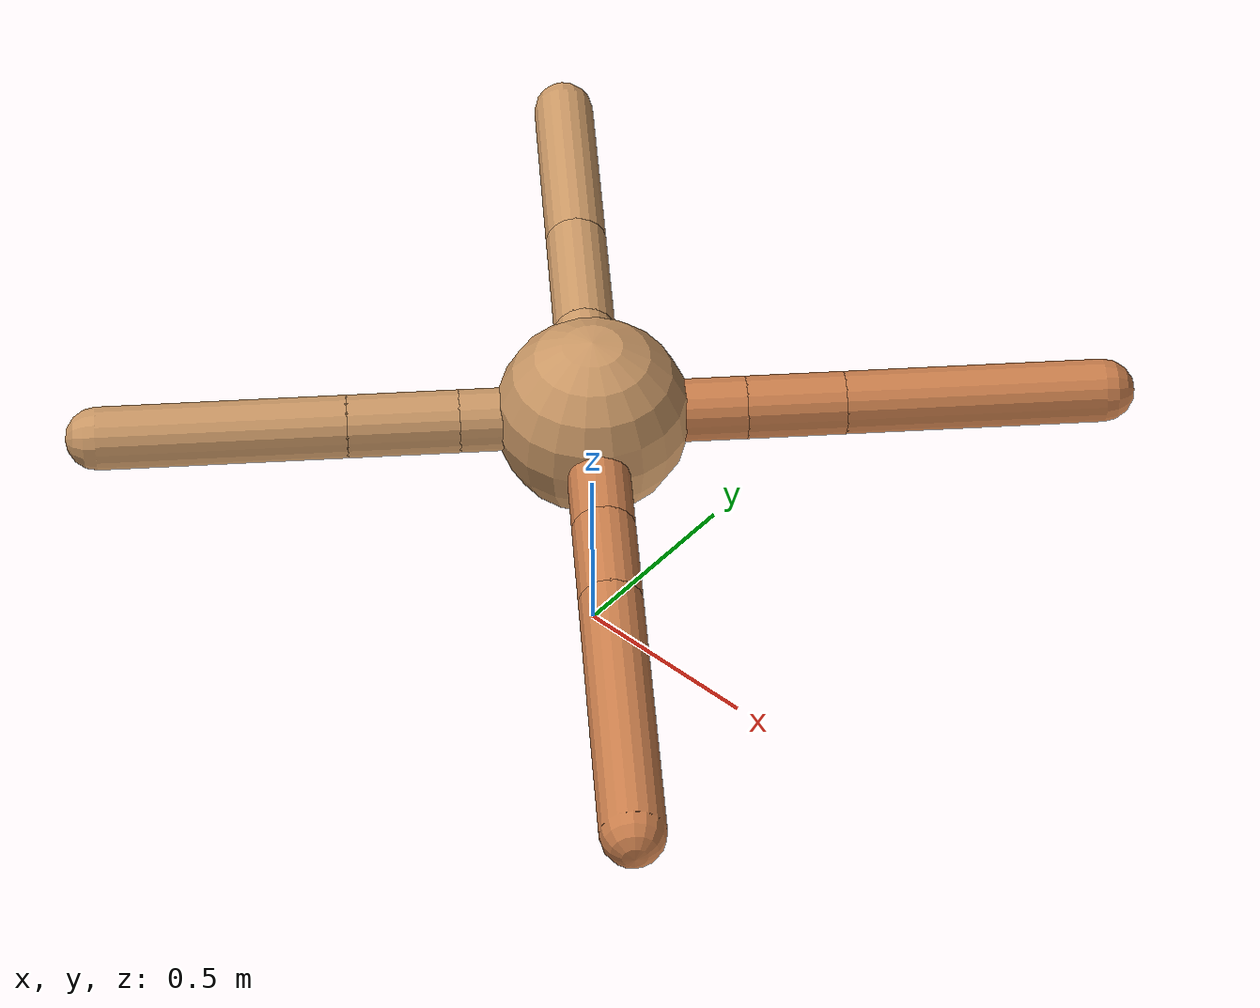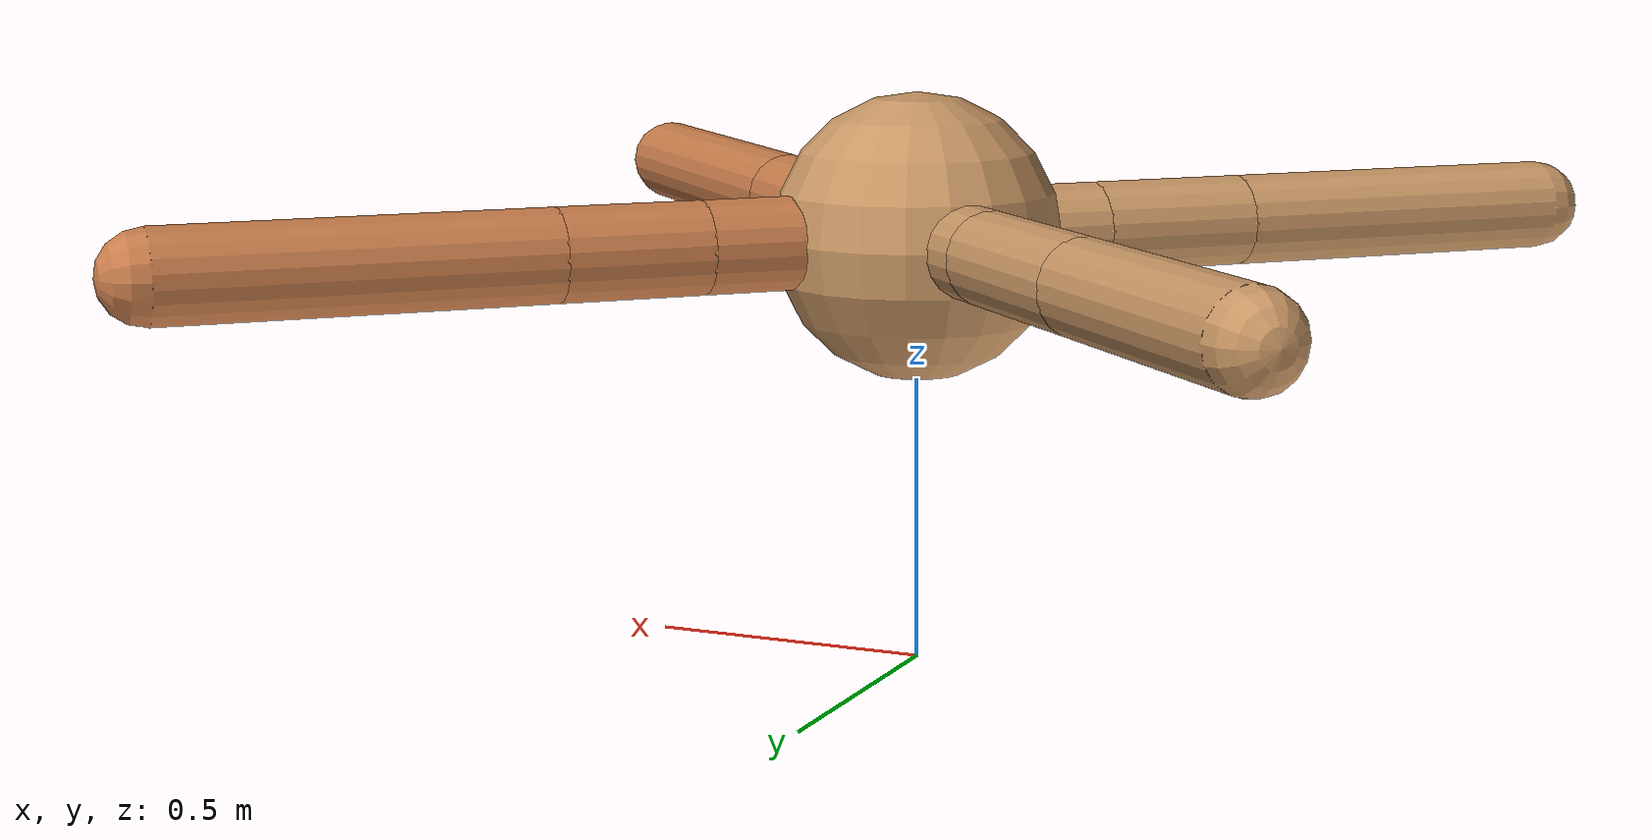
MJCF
<mujoco model="ant">
  <compiler angle="degree" coordinate="local" inertiafromgeom="true" />
  <option integrator="RK4" timestep="0.01" />
  <custom>
    <numeric data="0.0 0.0 0.55 1.0 0.0 0.0 0.0 0.0 1.0 0.0 -1.0 0.0 -1.0 0.0 1.0" name="init_qpos" />
  </custom>
  <default>
    <joint armature="1" damping="1" limited="true" />
    <geom conaffinity="0" condim="3" density="5.0" friction="1.5 0.1 0.1" margin="0.01" rgba="0.8 0.6 0.4 1" />
  </default>
  <worldbody>
    <body name="torso" pos="0 0 0.75">
      <geom name="torso_geom" pos="0 0 0" size="0.25" type="sphere" />

      <body name="front_left_leg" pos="0 0 0">
        <geom fromto="0.0 0.0 0.0 0.27585877448833596 0.27585877448833596 0.0" name="aux_1_geom" size="0.08" type="capsule" rgba=".8 .5 .3 1" />
        <body name="aux_1" pos="0.27585877448833596 0.27585877448833596 0.0">
          <joint axis="0 0 1" name="hip_1" pos="0.0 0.0 0.0" range="-40 40" type="hinge" />
          <geom fromto="0.0 0.0 0.0 0.17827745800060735 0.17827745800060735 0.0" name="left_leg_geom" size="0.08" type="capsule" rgba=".8 .5 .3 1" />
          <body pos="0.17827745800060735 0.17827745800060735 0.0" name="front_left_foot">
            <joint axis="-1 1 0" name="ankle_1" pos="0.0 0.0 0.0" range="30 100" type="hinge" />
            <geom fromto="0.0 0.0 0.0 0.47004307329937556 0.47004307329937556 0.0" name="left_ankle_geom" size="0.08" type="capsule" rgba=".8 .5 .3 1" />
          </body>
        </body>
      </body>
      <body name="front_right_leg" pos="0 0 0">
        <geom fromto="0.0 0.0 0.0 -0.22055658627288155 0.22055658627288155 0.0" name="aux_2_geom" size="0.08" type="capsule" />
        <body name="aux_2" pos="-0.22055658627288155 0.22055658627288155 0.0">
          <joint axis="0 0 1" name="hip_2" pos="0.0 0.0 0.0" range="-40 40" type="hinge" />
          <geom fromto="0.0 0.0 0.0 -0.2476433073658172 0.2476433073658172 0.0" name="right_leg_geom" size="0.08" type="capsule" />
          <body pos="-0.2476433073658172 0.2476433073658172 0.0" name="front_right_foot">
            <joint axis="1 1 0" name="ankle_2" pos="0.0 0.0 0.0" range="-100 -30" type="hinge" />
            <geom fromto="0.0 0.0 0.0 -0.3770503820644302 0.3770503820644302 0.0" name="right_ankle_geom" size="0.08" type="capsule" />
          </body>
        </body>
      </body>
      <body name="left_back_leg" pos="0 0 0">
        <geom fromto="0.0 0.0 0.0 -0.2391842427697932 -0.2391842427697932 0.0" name="aux_3_geom" size="0.08" type="capsule" />
        <body name="aux_3" pos="-0.2391842427697932 -0.2391842427697932 0.0">
          <joint axis="0 0 1" name="hip_3" pos="0.0 0.0 0.0" range="-40 40" type="hinge" />
          <geom fromto="0.0 0.0 0.0 -0.20129118428009832 -0.20129118428009832 0.0" name="back_leg_geom" size="0.08" type="capsule" />
          <body pos="-0.20129118428009832 -0.20129118428009832 0.0" name="left_back_foot">
            <joint axis="-1 1 0" name="ankle_3" pos="0.0 0.0 0.0" range="-100 -30" type="hinge" />
            <geom fromto="0.0 0.0 0.0 -0.4471195441928879 -0.4471195441928879 0.0" name="third_ankle_geom" size="0.08" type="capsule" />
          </body>
        </body>
      </body>
      <body name="right_back_leg" pos="0 0 0">
        <geom fromto="0.0 0.0 0.0 0.2854862213657734 -0.2854862213657734 0.0" name="aux_4_geom" size="0.08" type="capsule" rgba=".8 .5 .3 1" />
        <body name="aux_4" pos="0.2854862213657734 -0.2854862213657734 0.0">
          <joint axis="0 0 1" name="hip_4" pos="0.0 0.0 0.0" range="-40 40" type="hinge" />
          <geom fromto="0.0 0.0 0.0 0.17585279880725357 -0.17585279880725357 0.0" name="rightback_leg_geom" size="0.08" type="capsule" rgba=".8 .5 .3 1" />
          <body pos="0.17585279880725357 -0.17585279880725357 0.0" name="right_back_foot">
            <joint axis="1 1 0" name="ankle_4" pos="0.0 0.0 0.0" range="30 100" type="hinge" />
            <geom fromto="0.0 0.0 0.0 0.5182167270223225 -0.5182167270223225 0.0" name="fourth_ankle_geom" size="0.08" type="capsule" rgba=".8 .5 .3 1" />
          </body>
        </body>
      </body>
    </body>
  </worldbody>
  <actuator>
    <motor ctrllimited="true" ctrlrange="-1.0 1.0" joint="hip_4" gear="150" />
    <motor ctrllimited="true" ctrlrange="-1.0 1.0" joint="ankle_4" gear="150" />
    <motor ctrllimited="true" ctrlrange="-1.0 1.0" joint="hip_1" gear="150" />
    <motor ctrllimited="true" ctrlrange="-1.0 1.0" joint="ankle_1" gear="150" />
    <motor ctrllimited="true" ctrlrange="-1.0 1.0" joint="hip_2" gear="150" />
    <motor ctrllimited="true" ctrlrange="-1.0 1.0" joint="ankle_2" gear="150" />
    <motor ctrllimited="true" ctrlrange="-1.0 1.0" joint="hip_3" gear="150" />
    <motor ctrllimited="true" ctrlrange="-1.0 1.0" joint="ankle_3" gear="150" />
  </actuator>
</mujoco>
